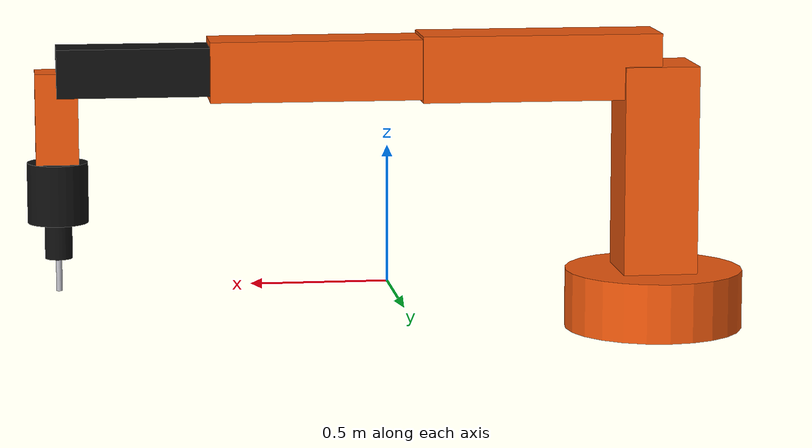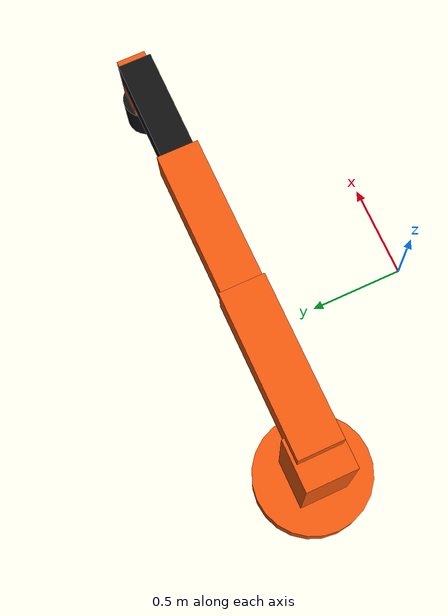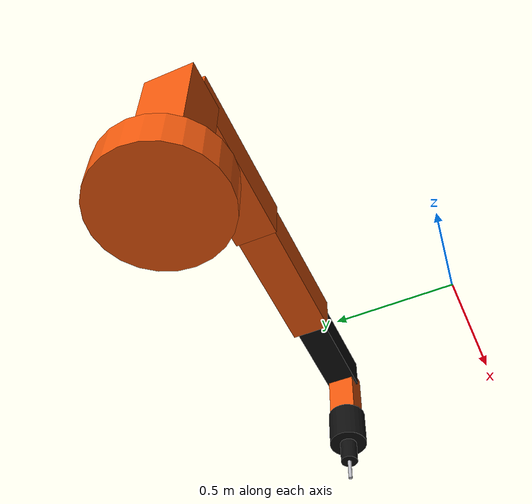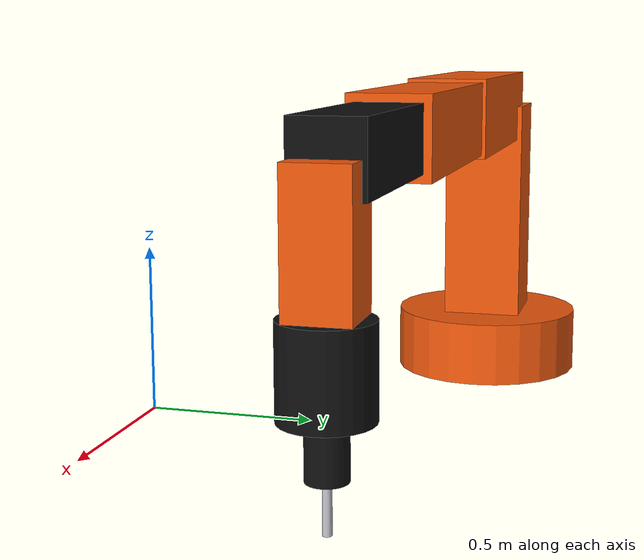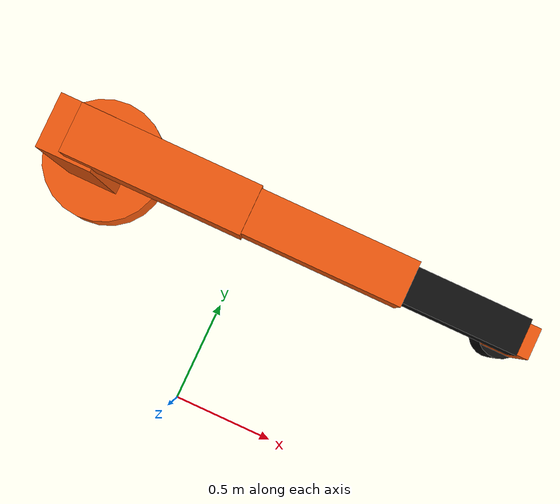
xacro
<?xml version="1.0"?>

<robot name="industrial_robot"
       xmlns:xacro="http://www.ros.org/wiki/xacro">
  <!-- WORLD ANCHOR -->

  <link name="world"/>

  <!-- MATERIALS -->

  <material name="robot_blue">
    <color rgba="0.95 0.35 0.05 1"/>
  </material>

  <material name="robot_dark">
    <color rgba="0.06 0.06 0.06 1"/>
  </material>

  <material name="metal">
    <color rgba="0.65 0.65 0.65 1"/>
  </material>

  <!-- BASE -->

  <link name="robot_base">

    <inertial>
      <mass value="10.0"/>
      <inertia ixx="0.5" ixy="0" ixz="0"
               iyy="0.5" iyz="0" izz="0.5"/>
    </inertial>

    <visual>
      <geometry>
        <cylinder radius="0.30" length="0.20"/>
      </geometry>
      <material name="robot_blue"/>
    </visual>

  </link>

  <!-- FIX ROBOT BASE TO WORLD -->

  <joint name="world_to_robot_base" type="fixed">

    <parent link="world"/>
    <child link="robot_base"/>

    <origin xyz="-0.8 0.9 0.1" rpy="0 0 0"/>

  </joint>

  <!-- JOINT 1 / LOWER COLUMN -->

  <link name="link1">

    <inertial>
      <mass value="5.0"/>
      <inertia ixx="0.1" ixy="0" ixz="0"
               iyy="0.1" iyz="0" izz="0.1"/>
    </inertial>

    <visual>
      <origin xyz="0 0 0.35"/>
      <geometry>
        <box size="0.25 0.25 0.70"/>
      </geometry>
      <material name="robot_blue"/>
    </visual>

  </link>

  <joint name="joint1" type="revolute">

    <parent link="robot_base"/>
    <child link="link1"/>

    <origin xyz="0 0 0.10" rpy="0 0 0"/>

    <axis xyz="0 0 1"/>

    <limit lower="-3.14" upper="3.14"
           effort="100" velocity="1.5"/>

  </joint>

  <!-- LINK 2 -->

  <link name="link2">

    <inertial>
      <mass value="4.0"/>
      <inertia ixx="0.2" ixy="0" ixz="0"
               iyy="0.2" iyz="0" izz="0.05"/>
    </inertial>

    <visual>
      <origin xyz="0 0 0.40"/>
      <geometry>
        <box size="0.22 0.22 0.80"/>
      </geometry>
      <material name="robot_blue"/>
    </visual>

  </link>

  <joint name="joint2" type="revolute">

    <parent link="link1"/>
    <child link="link2"/>

    <origin xyz="0 0 0.70" rpy="0 1.5708 0"/>

    <axis xyz="0 1 0"/>

    <limit lower="-2.5" upper="2.5"
           effort="100" velocity="1.5"/>

  </joint>

  <!-- LINK 3 -->

  <link name="link3">

    <inertial>
      <mass value="3.0"/>
      <inertia ixx="0.15" ixy="0" ixz="0"
               iyy="0.15" iyz="0" izz="0.04"/>
    </inertial>

    <visual>
      <origin xyz="0 0 0.35"/>
      <geometry>
        <box size="0.20 0.20 0.70"/>
      </geometry>
      <material name="robot_blue"/>
    </visual>

  </link>

  <joint name="joint3" type="revolute">

    <parent link="link2"/>
    <child link="link3"/>

    <origin xyz="0 0 0.80" rpy="0 0 0"/>

    <axis xyz="0 1 0"/>

    <limit lower="-2.5" upper="2.5"
           effort="100" velocity="1.5"/>

  </joint>

  <!-- LINK 4 -->

  <link name="link4">

    <inertial>
      <mass value="2.0"/>
      <inertia ixx="0.08" ixy="0" ixz="0"
               iyy="0.08" iyz="0" izz="0.03"/>
    </inertial>

    <visual>
      <origin xyz="0 0 0.25"/>
      <geometry>
        <box size="0.16 0.16 0.50"/>
      </geometry>
      <material name="robot_dark"/>
    </visual>

  </link>

  <joint name="joint4" type="revolute">

    <parent link="link3"/>
    <child link="link4"/>

    <origin xyz="0 0 0.70" rpy="0 0 0"/>

    <axis xyz="0 0 1"/>

    <limit lower="-3.14" upper="3.14"
           effort="50" velocity="2.0"/>

  </joint>

  <!-- LINK 5 -->

  <link name="link5">

    <inertial>
      <mass value="1.5"/>
      <inertia ixx="0.05" ixy="0" ixz="0"
               iyy="0.05" iyz="0" izz="0.02"/>
    </inertial>

    <visual>
      <origin xyz="0 0 0.20"/>
      <geometry>
        <box size="0.14 0.14 0.40"/>
      </geometry>
      <material name="robot_blue"/>
    </visual>

  </link>

  <joint name="joint5" type="revolute">

    <parent link="link4"/>
    <child link="link5"/>

    <origin xyz="0 0 0.50" rpy="0 1.5708 0"/>

    <axis xyz="0 1 0"/>

    <limit lower="-2.5" upper="2.5"
           effort="50" velocity="2.0"/>

  </joint>

  <!-- LINK 6 / WRIST -->

  <link name="link6">

    <inertial>
      <mass value="1.0"/>
      <inertia ixx="0.03" ixy="0" ixz="0"
               iyy="0.03" iyz="0" izz="0.03"/>
    </inertial>

    <visual>
      <geometry>
        <cylinder radius="0.10" length="0.20"/>
      </geometry>
      <material name="robot_dark"/>
    </visual>

  </link>

  <joint name="joint6" type="revolute">

    <parent link="link5"/>
    <child link="link6"/>

    <origin xyz="0 0 0.40" rpy="0 0 0"/>

    <axis xyz="0 0 1"/>

    <limit lower="-3.14" upper="3.14"
           effort="30" velocity="2.0"/>

  </joint>

  <!-- DRILLING TOOL / END EFFECTOR -->

  <link name="drill_spindle">
    <inertial>
      <origin xyz="0 0 -0.10" rpy="0 0 0"/>
      <mass value="0.3"/>
      <inertia ixx="0.001" ixy="0" ixz="0"
               iyy="0.001" iyz="0" izz="0.001"/>
    </inertial>

    <!-- Cylindrical spindle body -->
    <visual>
      <origin xyz="0 0 -0.06" rpy="0 0 0"/>
      <geometry>
        <cylinder radius="0.045" length="0.12"/>
      </geometry>
      <material name="robot_dark"/>
    </visual>

    <!-- Narrow drill bit -->
    <visual>
      <origin xyz="0 0 -0.17" rpy="0 0 0"/>
      <geometry>
        <cylinder radius="0.010" length="0.12"/>
      </geometry>
      <material name="drill_bit_material">
          <color rgba="0.75 0.75 0.78 1"/>
      </material>
    </visual>

  </link>

  <joint name="drill_spindle_joint" type="fixed">
    <parent link="link6"/>
    <child link="drill_spindle"/>
    <origin xyz="0 0 0.10" rpy="3.14159 0 0"/>
  </joint>

  <!-- TEMPORARY STATIC ROBOT -->

  <gazebo reference="robot_base">
    <material>Gazebo/Orange</material>
  </gazebo>

  <gazebo reference="link1">
    <material>Gazebo/Orange</material>
  </gazebo>

  <gazebo reference="link2">
    <material>Gazebo/Orange</material>
  </gazebo>

  <gazebo reference="link3">
    <material>Gazebo/Orange</material>
  </gazebo>

  <gazebo reference="link4">
    <material>Gazebo/DarkGrey</material>
  </gazebo>

  <gazebo reference="link5">
    <material>Gazebo/Orange</material>
  </gazebo>

  <gazebo reference="link6">
    <material>Gazebo/DarkGrey</material>
  </gazebo>

  <!-- ROS 2 CONTROL -->

  <gazebo reference="robot_base">
    <gravity>false</gravity>
    <selfCollide>false</selfCollide>
  </gazebo>

  <gazebo reference="link1">
    <gravity>false</gravity>
    <selfCollide>false</selfCollide>
  </gazebo>

  <gazebo reference="link2">
    <gravity>false</gravity>
    <selfCollide>false</selfCollide>
  </gazebo>

  <gazebo reference="link3">
    <gravity>false</gravity>
    <selfCollide>false</selfCollide>
  </gazebo>

  <gazebo reference="link4">
    <gravity>false</gravity>
    <selfCollide>false</selfCollide>
  </gazebo>

  <gazebo reference="link5">
    <gravity>false</gravity>
    <selfCollide>false</selfCollide>
  </gazebo>

  <gazebo reference="link6">
    <gravity>false</gravity>
    <selfCollide>false</selfCollide>
  </gazebo>

  <gazebo reference="drill_spindle">
    <gravity>false</gravity>
    <selfCollide>false</selfCollide>
  </gazebo>

  <ros2_control name="GazeboSystem" type="system">

    <hardware>
      <plugin>gazebo_ros2_control/GazeboSystem</plugin>
    </hardware>

    <joint name="joint1">
      <command_interface name="position"/>
      <state_interface name="position"/>
      <state_interface name="velocity"/>
    </joint>

    <joint name="joint2">
      <command_interface name="position"/>
      <state_interface name="position"/>
      <state_interface name="velocity"/>
    </joint>

    <joint name="joint3">
      <command_interface name="position"/>
      <state_interface name="position"/>
      <state_interface name="velocity"/>
    </joint>

    <joint name="joint4">
      <command_interface name="position"/>
      <state_interface name="position"/>
      <state_interface name="velocity"/>
    </joint>

    <joint name="joint5">
      <command_interface name="position"/>
      <state_interface name="position"/>
      <state_interface name="velocity"/>
    </joint>

    <joint name="joint6">
      <command_interface name="position"/>
      <state_interface name="position"/>
      <state_interface name="velocity"/>
    </joint>

  </ros2_control>

  <!-- Gazebo ROS 2 Control -->

  <gazebo>
    <plugin
      name="gazebo_ros2_control_workstation2"
      filename="libgazebo_ros2_control.so">

      <robot_param>robot_description</robot_param>
      <robot_param_node>/workstation2/robot_state_publisher</robot_param_node>

      <parameters>
        $(find assembly_line)/config/drilling_robot_controllers.yaml
      </parameters>

      <ros>
        <namespace>/workstation2</namespace>
      </ros>

    </plugin>
  </gazebo>

</robot>
